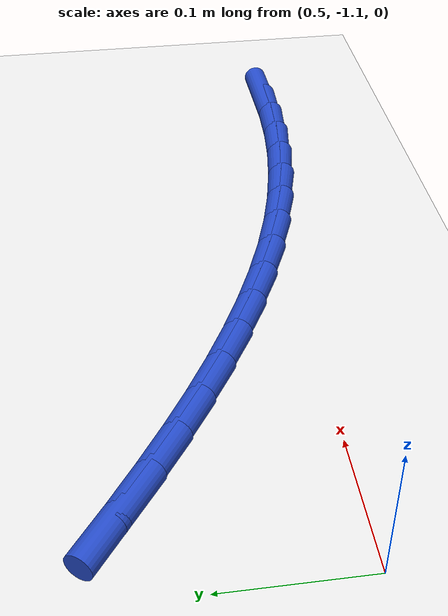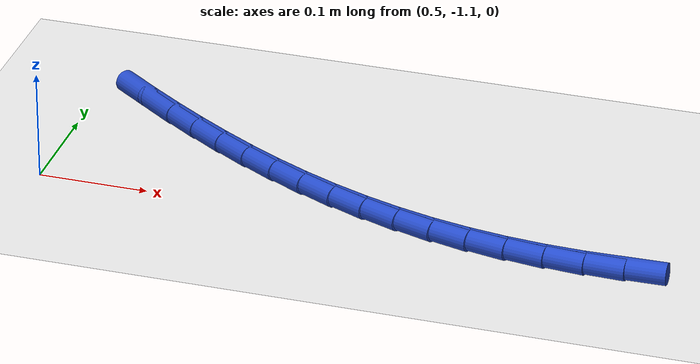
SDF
<sdf version="1.6">
 <world name="default">
  <model name="ground_plane">
   <static>1</static>
   <link name="link">
    <collision name="collision">
     <geometry><plane><normal>0 0 1</normal><size>100 100</size></plane></geometry>
     <surface><friction><ode><mu>100</mu><mu2>50</mu2></ode></friction></surface>
    </collision>
    <visual name="visual">
     <cast_shadows>0</cast_shadows>
     <geometry><plane><normal>0 0 1</normal><size>100 100</size></plane></geometry>
     <material>
      <script><uri>file://media/materials/scripts/gazebo.material</uri><name>Gazebo/WhiteGlow</name></script>
     </material>
    </visual>
   </link>
  </model>
  <model name="line">
   <link name="link_142">
    <pose>1.0359895084565365 -1.1230602715621552 0.01 0 1.57 0.01831001661366706</pose>
    <collision name="collision">
     <geometry><cylinder><radius>0.01</radius><length>0.08</length></cylinder></geometry>
    </collision>
    <visual name="visual">
     <material>
      <script><name>Gazebo/Blue</name><uri>file://media/materials/scripts/gazebo.material</uri></script>
     </material>
     <geometry><cylinder><radius>0.01</radius><length>0.08</length></cylinder></geometry>
    </visual>
   </link>
   <link name="link_143">
    <pose>1.0005970635232635 -1.1237083802460952 0.01 0 1.57 -0.03819376892217687</pose>
    <collision name="collision">
     <geometry><cylinder><radius>0.01</radius><length>0.08</length></cylinder></geometry>
    </collision>
    <visual name="visual">
     <material>
      <script><name>Gazebo/Blue</name><uri>file://media/materials/scripts/gazebo.material</uri></script>
     </material>
     <geometry><cylinder><radius>0.01</radius><length>0.08</length></cylinder></geometry>
    </visual>
   </link>
   <link name="link_144">
    <pose>0.9651961365919149 -1.1223556275769784 0.01 0 1.57 -0.09421784586555969</pose>
    <collision name="collision">
     <geometry><cylinder><radius>0.01</radius><length>0.08</length></cylinder></geometry>
    </collision>
    <visual name="visual">
     <material>
      <script><name>Gazebo/Blue</name><uri>file://media/materials/scripts/gazebo.material</uri></script>
     </material>
     <geometry><cylinder><radius>0.01</radius><length>0.08</length></cylinder></geometry>
    </visual>
   </link>
   <link name="link_145">
    <pose>0.9299652758995812 -1.1190263947369552 0.01 0 1.57 -0.15026333587605753</pose>
    <collision name="collision">
     <geometry><cylinder><radius>0.01</radius><length>0.08</length></cylinder></geometry>
    </collision>
    <visual name="visual">
     <material>
      <script><name>Gazebo/Blue</name><uri>file://media/materials/scripts/gazebo.material</uri></script>
     </material>
     <geometry><cylinder><radius>0.01</radius><length>0.08</length></cylinder></geometry>
    </visual>
   </link>
   <link name="link_146">
    <pose>0.8950830296833516 -1.1137450629081767 0.01 0 1.57 -0.20683835935733022</pose>
    <collision name="collision">
     <geometry><cylinder><radius>0.01</radius><length>0.08</length></cylinder></geometry>
    </collision>
    <visual name="visual">
     <material>
      <script><name>Gazebo/Blue</name><uri>file://media/materials/scripts/gazebo.material</uri></script>
     </material>
     <geometry><cylinder><radius>0.01</radius><length>0.08</length></cylinder></geometry>
    </visual>
   </link>
   <link name="link_147">
    <pose>0.8607279461803166 -1.1065360132727928 0.01 0 1.57 -0.2639950519154565</pose>
    <collision name="collision">
     <geometry><cylinder><radius>0.01</radius><length>0.08</length></cylinder></geometry>
    </collision>
    <visual name="visual">
     <material>
      <script><name>Gazebo/Blue</name><uri>file://media/materials/scripts/gazebo.material</uri></script>
     </material>
     <geometry><cylinder><radius>0.01</radius><length>0.08</length></cylinder></geometry>
    </visual>
   </link>
   <link name="link_148">
    <pose>0.8270581017282849 -1.0974349234342546 0.01 0 1.57 -0.3189229917817258</pose>
    <collision name="collision">
     <geometry><cylinder><radius>0.01</radius><length>0.08</length></cylinder></geometry>
    </collision>
    <visual name="visual">
     <material>
      <script><name>Gazebo/Blue</name><uri>file://media/materials/scripts/gazebo.material</uri></script>
     </material>
     <geometry><cylinder><radius>0.01</radius><length>0.08</length></cylinder></geometry>
    </visual>
   </link>
   <link name="link_149">
    <pose>0.794097431968878 -1.0865514900108988 0.01 0 1.57 -0.3701466820669388</pose>
    <collision name="collision">
     <geometry><cylinder><radius>0.01</radius><length>0.08</length></cylinder></geometry>
    </collision>
    <visual name="visual">
     <material>
      <script><name>Gazebo/Blue</name><uri>file://media/materials/scripts/gazebo.material</uri></script>
     </material>
     <geometry><cylinder><radius>0.01</radius><length>0.08</length></cylinder></geometry>
    </visual>
   </link>
   <link name="link_150">
    <pose>0.7618158644165773 -1.074025211377578 0.01 0 1.57 -0.4174472162160153</pose>
    <collision name="collision">
     <geometry><cylinder><radius>0.01</radius><length>0.08</length></cylinder></geometry>
    </collision>
    <visual name="visual">
     <material>
      <script><name>Gazebo/Blue</name><uri>file://media/materials/scripts/gazebo.material</uri></script>
     </material>
     <geometry><cylinder><radius>0.01</radius><length>0.08</length></cylinder></geometry>
    </visual>
   </link>
   <link name="link_151">
    <pose>0.7301831784991867 -1.0599956676235716 0.01 0 1.57 -0.4607082797504165</pose>
    <collision name="collision">
     <geometry><cylinder><radius>0.01</radius><length>0.08</length></cylinder></geometry>
    </collision>
    <visual name="visual">
     <material>
      <script><name>Gazebo/Blue</name><uri>file://media/materials/scripts/gazebo.material</uri></script>
     </material>
     <geometry><cylinder><radius>0.01</radius><length>0.08</length></cylinder></geometry>
    </visual>
   </link>
   <link name="link_152">
    <pose>0.6991691536445107 -1.0446024388381587 0.01 0 1.57 -0.4998926994635787</pose>
    <collision name="collision">
     <geometry><cylinder><radius>0.01</radius><length>0.08</length></cylinder></geometry>
    </collision>
    <visual name="visual">
     <material>
      <script><name>Gazebo/Blue</name><uri>file://media/materials/scripts/gazebo.material</uri></script>
     </material>
     <geometry><cylinder><radius>0.01</radius><length>0.08</length></cylinder></geometry>
    </visual>
   </link>
   <link name="link_153">
    <pose>0.6687435692803521 -1.0279851051106175 0.01 0 1.57 -0.5350214718327364</pose>
    <collision name="collision">
     <geometry><cylinder><radius>0.01</radius><length>0.08</length></cylinder></geometry>
    </collision>
    <visual name="visual">
     <material>
      <script><name>Gazebo/Blue</name><uri>file://media/materials/scripts/gazebo.material</uri></script>
     </material>
     <geometry><cylinder><radius>0.01</radius><length>0.08</length></cylinder></geometry>
    </visual>
   </link>
   <link name="link_154">
    <pose>0.6388762048345155 -1.0102832465302267 0.01 0 1.57 -0.5661540100977366</pose>
    <collision name="collision">
     <geometry><cylinder><radius>0.01</radius><length>0.08</length></cylinder></geometry>
    </collision>
    <visual name="visual">
     <material>
      <script><name>Gazebo/Blue</name><uri>file://media/materials/scripts/gazebo.material</uri></script>
     </material>
     <geometry><cylinder><radius>0.01</radius><length>0.08</length></cylinder></geometry>
    </visual>
   </link>
   <link name="link_155">
    <pose>0.6095368397348047 -0.9916364431862659 0.01 0 1.57 -0.5933707753840127</pose>
    <collision name="collision">
     <geometry><cylinder><radius>0.01</radius><length>0.08</length></cylinder></geometry>
    </collision>
    <visual name="visual">
     <material>
      <script><name>Gazebo/Blue</name><uri>file://media/materials/scripts/gazebo.material</uri></script>
     </material>
     <geometry><cylinder><radius>0.01</radius><length>0.08</length></cylinder></geometry>
    </visual>
   </link>
   <link name="link_156">
    <pose>0.580695253409024 -0.9721842751680141 0.01 0 1.57 -0.6167877702430509</pose>
    <collision name="collision">
     <geometry><cylinder><radius>0.01</radius><length>0.08</length></cylinder></geometry>
    </collision>
    <visual name="visual">
     <material>
      <script><name>Gazebo/Blue</name><uri>file://media/materials/scripts/gazebo.material</uri></script>
     </material>
     <geometry><cylinder><radius>0.01</radius><length>0.08</length></cylinder></geometry>
    </visual>
   </link>
   <link name="link_157">
    <pose>0.552321556024625 -0.952065317952809 0.01 0 1.57 -0.6379829511736335</pose>
    <collision name="collision">
     <geometry><cylinder><radius>0.01</radius><length>0.08</length></cylinder></geometry>
    </collision>
    <visual name="visual">
     <material>
      <script><name>Gazebo/Blue</name><uri>file://media/materials/scripts/gazebo.material</uri></script>
     </material>
     <geometry><cylinder><radius>0.01</radius><length>0.08</length></cylinder></geometry>
    </visual>
   </link>
  </model>
 </world>
</sdf>
